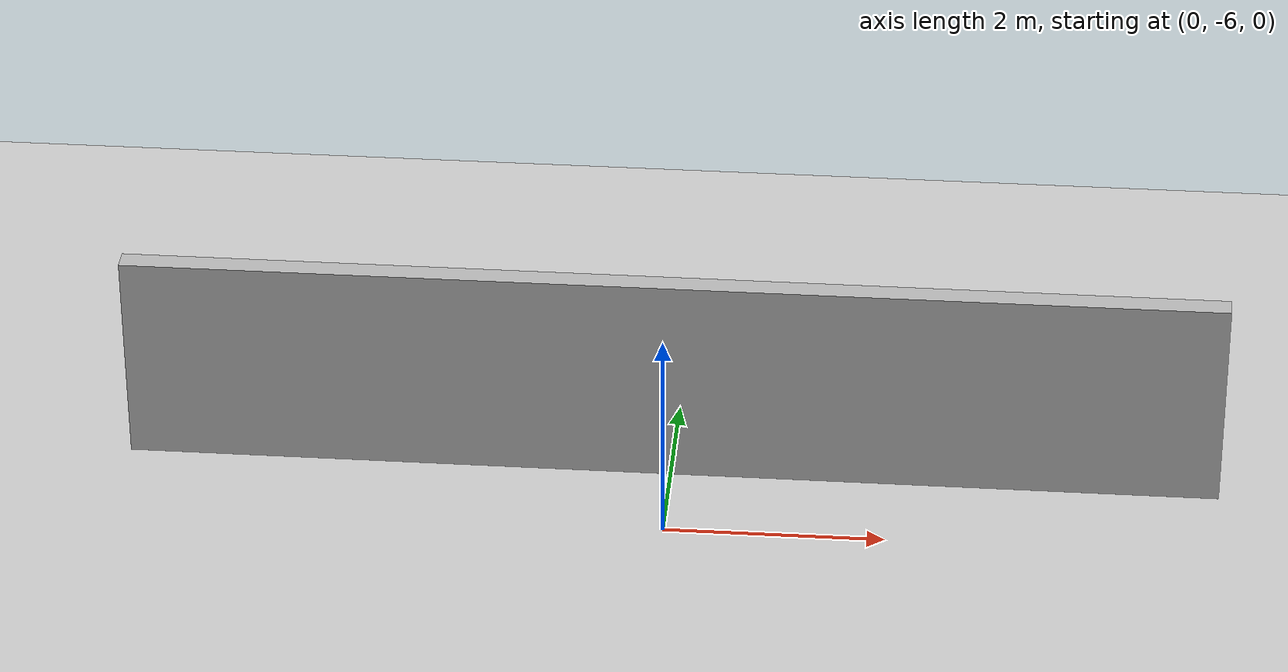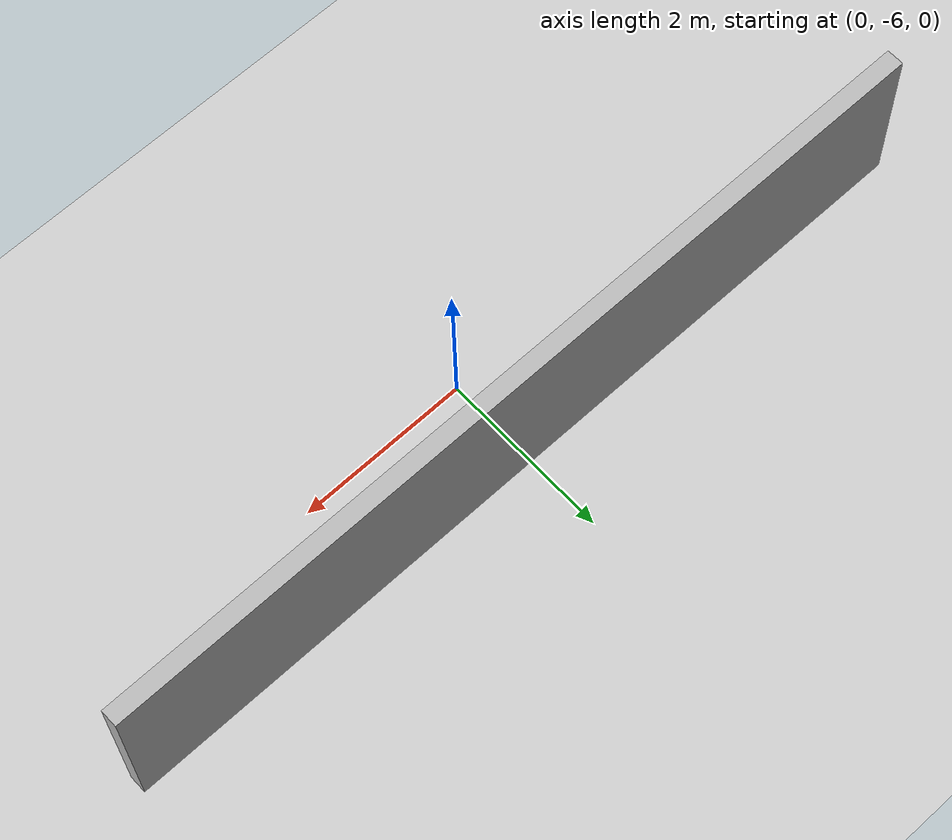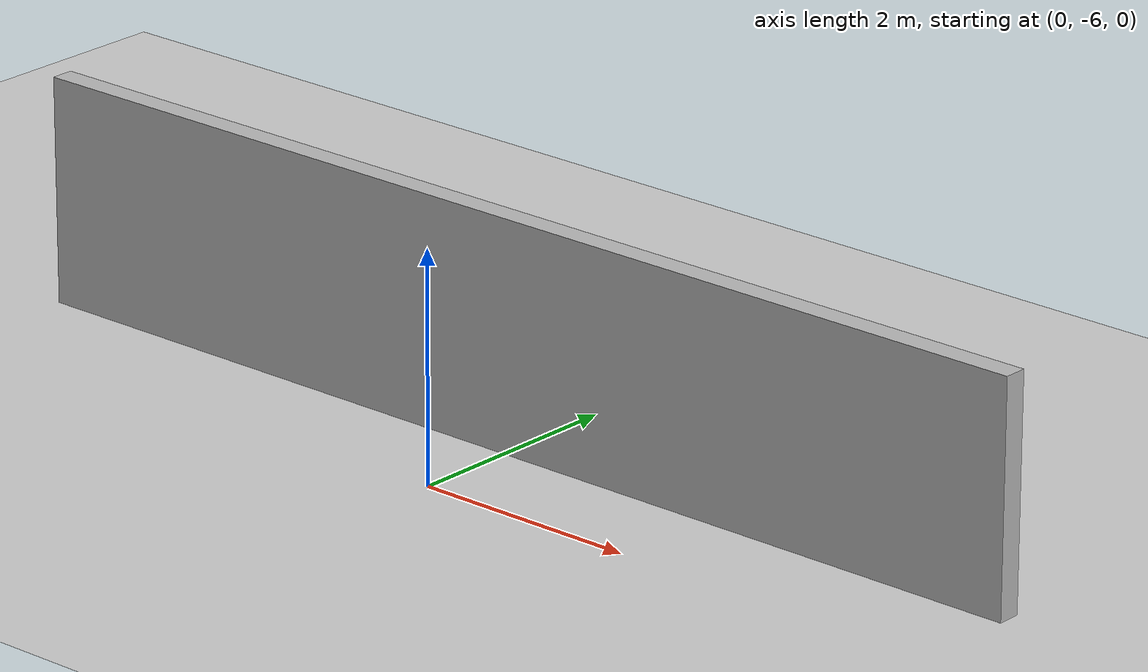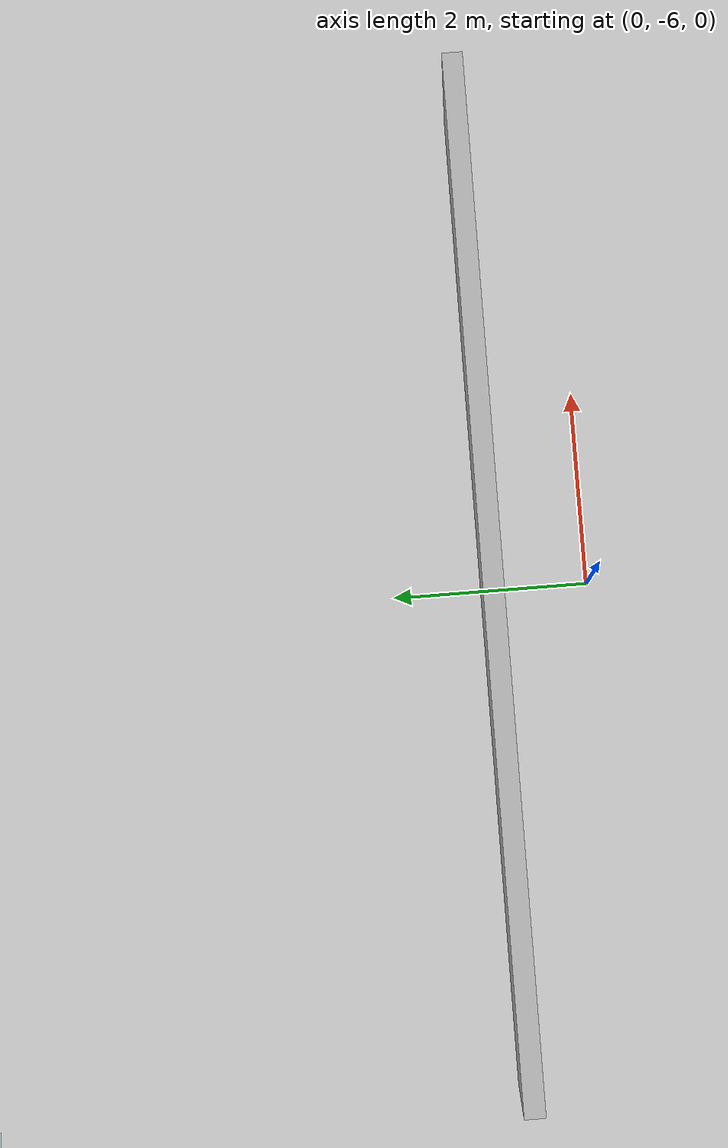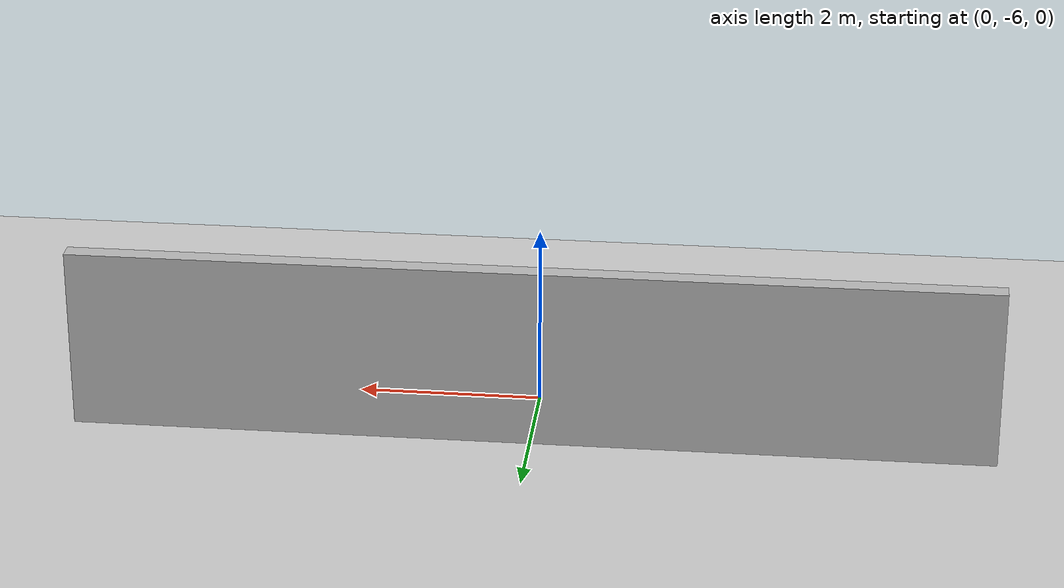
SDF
<?xml version="1.0" ?>
<sdf version="1.6">
  <world name="default">
    <physics type="ode">
    <gravity>0 0 -9.81</gravity>
      <ode>
        <solver>
          <type>quick</type>
          <iters>20</iters>
          <sor>1.0</sor>
        </solver>
        <constraints>
          <cfm>0.0</cfm>
          <erp>0.2</erp>
          <contact_max_correcting_vel>100.0</contact_max_correcting_vel>
          <contact_surface_layer>0.0</contact_surface_layer>
        </constraints>
      </ode>
  <real_time_update_rate>200</real_time_update_rate>
  <max_step_size>0.005</max_step_size> </physics>
    <scene>
      <ambient>0.8 0.8 0.8 1.0</ambient>
      <background>0.7 0.7 0.7 1.0</background>
      <shadows>true</shadows>
    </scene>
    <include>
      <uri>model://sun</uri>
    </include>
    <include>
      <uri>model://ground_plane</uri>
    </include>
    <model name="wall_1_model">
      <pose>0 -5 1 0 0 0</pose>
      <static>true</static>
      <link name="wall_1_body">
        <inertial>
          <mass>1.0</mass>
          <inertia>
            <ixx>1.0</ixx>
            <ixy>0.0</ixy>
            <ixz>0.0</ixz>
            <iyy>1.0</iyy>
            <iyz>0.0</iyz>
            <izz>1.0</izz>
          </inertia>
        </inertial>
        <collision name="collision">
          <geometry>
            <box>
              <size>10 0.2 2</size>
            </box>
          </geometry>
        </collision>
        <visual name="visual">
          <geometry>
            <box>
              <size>10 0.2 2</size>
            </box>
          </geometry>
        </visual>
      </link>
    </model>

  </world>
</sdf>
